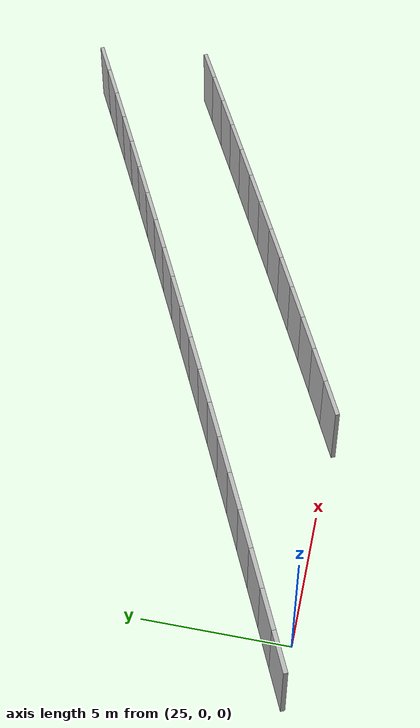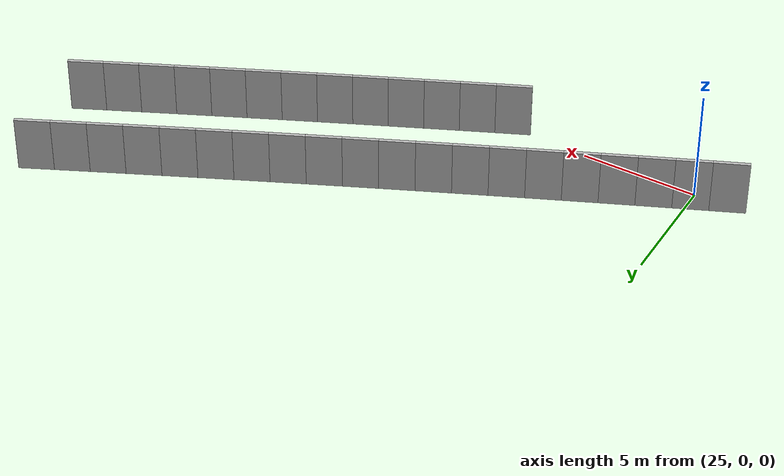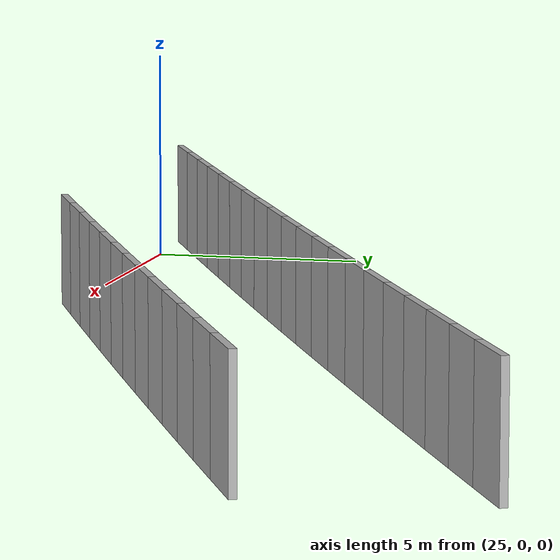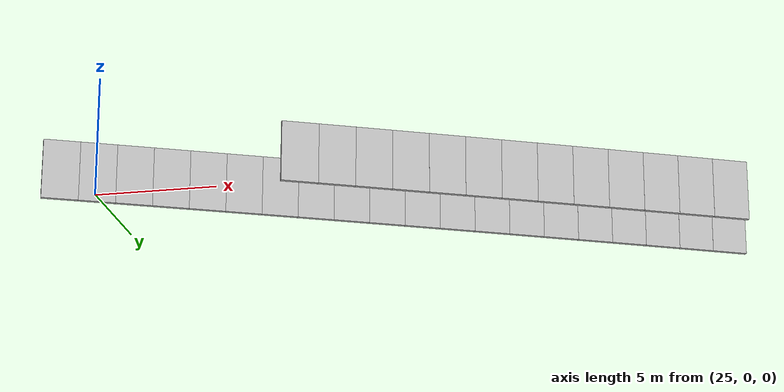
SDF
<?xml version="1.0" ?>
<sdf version="1.6">
  <model name="sps_3305">
    <pose frame="">0 0 0 0 -0 0</pose>
    <static>1</static>
    <self_collide>0</self_collide>
    <allow_auto_disable>0</allow_auto_disable>
    <link name="Wall3928">
      <kinematic>0</kinematic>
      <gravity>1</gravity>
      <self_collide>0</self_collide>
      <collision name="collision">
        <geometry>
          <box>
            <size>1.4966 0.15 2.5</size>
          </box>
        </geometry>
        <pose frame="">0 0 0 0 -0 0</pose>
      </collision>
      <visual name="visual">
        <geometry>
          <box>
            <size>1.4966 0.15 2.5</size>
          </box>
        </geometry>
        <pose frame="">0 0 0 0 -0 0</pose>
        <cast_shadows>1</cast_shadows>
        <transparency>0.0</transparency>
      </visual>
      <pose frame="">23.4305 0.22441 1.25 0 -0 0.417616</pose>
    </link>
    <link name="Wall3929">
      <kinematic>0</kinematic>
      <gravity>1</gravity>
      <self_collide>0</self_collide>
      <collision name="collision">
        <geometry>
          <box>
            <size>1.49643 0.15 2.5</size>
          </box>
        </geometry>
        <pose frame="">0 0 0 0 -0 0</pose>
      </collision>
      <visual name="visual">
        <geometry>
          <box>
            <size>1.49643 0.15 2.5</size>
          </box>
        </geometry>
        <pose frame="">0 0 0 0 -0 0</pose>
        <cast_shadows>1</cast_shadows>
        <transparency>0.0</transparency>
      </visual>
      <pose frame="">24.7979 0.832503 1.25 0 -0 0.419272</pose>
    </link>
    <link name="Wall3930">
      <kinematic>0</kinematic>
      <gravity>1</gravity>
      <self_collide>0</self_collide>
      <collision name="collision">
        <geometry>
          <box>
            <size>1.49664 0.15 2.5</size>
          </box>
        </geometry>
        <pose frame="">0 0 0 0 -0 0</pose>
      </collision>
      <visual name="visual">
        <geometry>
          <box>
            <size>1.49664 0.15 2.5</size>
          </box>
        </geometry>
        <pose frame="">0 0 0 0 -0 0</pose>
        <cast_shadows>1</cast_shadows>
        <transparency>0.0</transparency>
      </visual>
      <pose frame="">26.1644 1.4427 1.25 0 -0 0.420684</pose>
    </link>
    <link name="Wall3931">
      <kinematic>0</kinematic>
      <gravity>1</gravity>
      <self_collide>0</self_collide>
      <collision name="collision">
        <geometry>
          <box>
            <size>1.49654 0.15 2.5</size>
          </box>
        </geometry>
        <pose frame="">0 0 0 0 -0 0</pose>
      </collision>
      <visual name="visual">
        <geometry>
          <box>
            <size>1.49654 0.15 2.5</size>
          </box>
        </geometry>
        <pose frame="">0 0 0 0 -0 0</pose>
        <cast_shadows>1</cast_shadows>
        <transparency>0.0</transparency>
      </visual>
      <pose frame="">27.53 2.05501 1.25 0 -0 0.422324</pose>
    </link>
    <link name="Wall3932">
      <kinematic>0</kinematic>
      <gravity>1</gravity>
      <self_collide>0</self_collide>
      <collision name="collision">
        <geometry>
          <box>
            <size>1.49651 0.15 2.5</size>
          </box>
        </geometry>
        <pose frame="">0 0 0 0 -0 0</pose>
      </collision>
      <visual name="visual">
        <geometry>
          <box>
            <size>1.49651 0.15 2.5</size>
          </box>
        </geometry>
        <pose frame="">0 0 0 0 -0 0</pose>
        <cast_shadows>1</cast_shadows>
        <transparency>0.0</transparency>
      </visual>
      <pose frame="">28.8945 2.6696 1.25 0 -0 0.424076</pose>
    </link>
    <link name="Wall3933">
      <kinematic>0</kinematic>
      <gravity>1</gravity>
      <self_collide>0</self_collide>
      <collision name="collision">
        <geometry>
          <box>
            <size>1.49651 0.15 2.5</size>
          </box>
        </geometry>
        <pose frame="">0 0 0 0 -0 0</pose>
      </collision>
      <visual name="visual">
        <geometry>
          <box>
            <size>1.49651 0.15 2.5</size>
          </box>
        </geometry>
        <pose frame="">0 0 0 0 -0 0</pose>
        <cast_shadows>1</cast_shadows>
        <transparency>0.0</transparency>
      </visual>
      <pose frame="">30.258 3.28639 1.25 0 -0 0.425554</pose>
    </link>
    <link name="Wall3934">
      <kinematic>0</kinematic>
      <gravity>1</gravity>
      <self_collide>0</self_collide>
      <collision name="collision">
        <geometry>
          <box>
            <size>1.49664 0.15 2.5</size>
          </box>
        </geometry>
        <pose frame="">0 0 0 0 -0 0</pose>
      </collision>
      <visual name="visual">
        <geometry>
          <box>
            <size>1.49664 0.15 2.5</size>
          </box>
        </geometry>
        <pose frame="">0 0 0 0 -0 0</pose>
        <cast_shadows>1</cast_shadows>
        <transparency>0.0</transparency>
      </visual>
      <pose frame="">31.6206 3.90529 1.25 0 -0 0.427127</pose>
    </link>
    <link name="Wall3935">
      <kinematic>0</kinematic>
      <gravity>1</gravity>
      <self_collide>0</self_collide>
      <collision name="collision">
        <geometry>
          <box>
            <size>1.49642 0.15 2.5</size>
          </box>
        </geometry>
        <pose frame="">0 0 0 0 -0 0</pose>
      </collision>
      <visual name="visual">
        <geometry>
          <box>
            <size>1.49642 0.15 2.5</size>
          </box>
        </geometry>
        <pose frame="">0 0 0 0 -0 0</pose>
        <cast_shadows>1</cast_shadows>
        <transparency>0.0</transparency>
      </visual>
      <pose frame="">32.9822 4.52629 1.25 0 -0 0.428673</pose>
    </link>
    <link name="Wall3936">
      <kinematic>0</kinematic>
      <gravity>1</gravity>
      <self_collide>0</self_collide>
      <collision name="collision">
        <geometry>
          <box>
            <size>1.49664 0.15 2.5</size>
          </box>
        </geometry>
        <pose frame="">0 0 0 0 -0 0</pose>
      </collision>
      <visual name="visual">
        <geometry>
          <box>
            <size>1.49664 0.15 2.5</size>
          </box>
        </geometry>
        <pose frame="">0 0 0 0 -0 0</pose>
        <cast_shadows>1</cast_shadows>
        <transparency>0.0</transparency>
      </visual>
      <pose frame="">34.3428 5.14949 1.25 0 -0 0.430357</pose>
    </link>
    <link name="Wall3937">
      <kinematic>0</kinematic>
      <gravity>1</gravity>
      <self_collide>0</self_collide>
      <collision name="collision">
        <geometry>
          <box>
            <size>1.49642 0.15 2.5</size>
          </box>
        </geometry>
        <pose frame="">0 0 0 0 -0 0</pose>
      </collision>
      <visual name="visual">
        <geometry>
          <box>
            <size>1.49642 0.15 2.5</size>
          </box>
        </geometry>
        <pose frame="">0 0 0 0 -0 0</pose>
        <cast_shadows>1</cast_shadows>
        <transparency>0.0</transparency>
      </visual>
      <pose frame="">35.7024 5.77489 1.25 0 -0 0.431904</pose>
    </link>
    <link name="Wall3938">
      <kinematic>0</kinematic>
      <gravity>1</gravity>
      <self_collide>0</self_collide>
      <collision name="collision">
        <geometry>
          <box>
            <size>1.4964 0.15 2.5</size>
          </box>
        </geometry>
        <pose frame="">0 0 0 0 -0 0</pose>
      </collision>
      <visual name="visual">
        <geometry>
          <box>
            <size>1.4964 0.15 2.5</size>
          </box>
        </geometry>
        <pose frame="">0 0 0 0 -0 0</pose>
        <cast_shadows>1</cast_shadows>
        <transparency>0.0</transparency>
      </visual>
      <pose frame="">37.0608 6.40239 1.25 0 -0 0.433527</pose>
    </link>
    <link name="Wall3939">
      <kinematic>0</kinematic>
      <gravity>1</gravity>
      <self_collide>0</self_collide>
      <collision name="collision">
        <geometry>
          <box>
            <size>1.49659 0.15 2.5</size>
          </box>
        </geometry>
        <pose frame="">0 0 0 0 -0 0</pose>
      </collision>
      <visual name="visual">
        <geometry>
          <box>
            <size>1.49659 0.15 2.5</size>
          </box>
        </geometry>
        <pose frame="">0 0 0 0 -0 0</pose>
        <cast_shadows>1</cast_shadows>
        <transparency>0.0</transparency>
      </visual>
      <pose frame="">38.4184 7.032 1.25 0 -0 0.434954</pose>
    </link>
    <link name="Wall3940">
      <kinematic>0</kinematic>
      <gravity>1</gravity>
      <self_collide>0</self_collide>
      <collision name="collision">
        <geometry>
          <box>
            <size>1.49657 0.15 2.5</size>
          </box>
        </geometry>
        <pose frame="">0 0 0 0 -0 0</pose>
      </collision>
      <visual name="visual">
        <geometry>
          <box>
            <size>1.49657 0.15 2.5</size>
          </box>
        </geometry>
        <pose frame="">0 0 0 0 -0 0</pose>
        <cast_shadows>1</cast_shadows>
        <transparency>0.0</transparency>
      </visual>
      <pose frame="">39.7752 7.66371 1.25 0 -0 0.436578</pose>
    </link>
    <link name="Wall3941">
      <kinematic>0</kinematic>
      <gravity>1</gravity>
      <self_collide>0</self_collide>
      <collision name="collision">
        <geometry>
          <box>
            <size>1.49654 0.15 2.5</size>
          </box>
        </geometry>
        <pose frame="">0 0 0 0 -0 0</pose>
      </collision>
      <visual name="visual">
        <geometry>
          <box>
            <size>1.49654 0.15 2.5</size>
          </box>
        </geometry>
        <pose frame="">0 0 0 0 -0 0</pose>
        <cast_shadows>1</cast_shadows>
        <transparency>0.0</transparency>
      </visual>
      <pose frame="">41.1309 8.29759 1.25 0 -0 0.438165</pose>
    </link>
    <link name="Wall3942">
      <kinematic>0</kinematic>
      <gravity>1</gravity>
      <self_collide>0</self_collide>
      <collision name="collision">
        <geometry>
          <box>
            <size>1.49645 0.15 2.5</size>
          </box>
        </geometry>
        <pose frame="">0 0 0 0 -0 0</pose>
      </collision>
      <visual name="visual">
        <geometry>
          <box>
            <size>1.49645 0.15 2.5</size>
          </box>
        </geometry>
        <pose frame="">0 0 0 0 -0 0</pose>
        <cast_shadows>1</cast_shadows>
        <transparency>0.0</transparency>
      </visual>
      <pose frame="">42.4854 8.93367 1.25 0 -0 0.43986</pose>
    </link>
    <link name="Wall3943">
      <kinematic>0</kinematic>
      <gravity>1</gravity>
      <self_collide>0</self_collide>
      <collision name="collision">
        <geometry>
          <box>
            <size>1.49659 0.15 2.5</size>
          </box>
        </geometry>
        <pose frame="">0 0 0 0 -0 0</pose>
      </collision>
      <visual name="visual">
        <geometry>
          <box>
            <size>1.49659 0.15 2.5</size>
          </box>
        </geometry>
        <pose frame="">0 0 0 0 -0 0</pose>
        <cast_shadows>1</cast_shadows>
        <transparency>0.0</transparency>
      </visual>
      <pose frame="">43.839 9.57188 1.25 0 -0 0.441303</pose>
    </link>
    <link name="Wall3944">
      <kinematic>0</kinematic>
      <gravity>1</gravity>
      <self_collide>0</self_collide>
      <collision name="collision">
        <geometry>
          <box>
            <size>1.49643 0.15 2.5</size>
          </box>
        </geometry>
        <pose frame="">0 0 0 0 -0 0</pose>
      </collision>
      <visual name="visual">
        <geometry>
          <box>
            <size>1.49643 0.15 2.5</size>
          </box>
        </geometry>
        <pose frame="">0 0 0 0 -0 0</pose>
        <cast_shadows>1</cast_shadows>
        <transparency>0.0</transparency>
      </visual>
      <pose frame="">45.1916 10.2122 1.25 0 -0 0.44298</pose>
    </link>
    <link name="Wall3945">
      <kinematic>0</kinematic>
      <gravity>1</gravity>
      <self_collide>0</self_collide>
      <collision name="collision">
        <geometry>
          <box>
            <size>1.49663 0.15 2.5</size>
          </box>
        </geometry>
        <pose frame="">0 0 0 0 -0 0</pose>
      </collision>
      <visual name="visual">
        <geometry>
          <box>
            <size>1.49663 0.15 2.5</size>
          </box>
        </geometry>
        <pose frame="">0 0 0 0 -0 0</pose>
        <cast_shadows>1</cast_shadows>
        <transparency>0.0</transparency>
      </visual>
      <pose frame="">46.5432 10.8547 1.25 0 -0 0.444496</pose>
    </link>
    <link name="Wall3946">
      <kinematic>0</kinematic>
      <gravity>1</gravity>
      <self_collide>0</self_collide>
      <collision name="collision">
        <geometry>
          <box>
            <size>1.49655 0.15 2.5</size>
          </box>
        </geometry>
        <pose frame="">0 0 0 0 -0 0</pose>
      </collision>
      <visual name="visual">
        <geometry>
          <box>
            <size>1.49655 0.15 2.5</size>
          </box>
        </geometry>
        <pose frame="">0 0 0 0 -0 0</pose>
        <cast_shadows>1</cast_shadows>
        <transparency>0.0</transparency>
      </visual>
      <pose frame="">47.8939 11.4994 1.25 0 -0 0.446192</pose>
    </link>
    <link name="Wall3947">
      <kinematic>0</kinematic>
      <gravity>1</gravity>
      <self_collide>0</self_collide>
      <collision name="collision">
        <geometry>
          <box>
            <size>1.49657 0.15 2.5</size>
          </box>
        </geometry>
        <pose frame="">0 0 0 0 -0 0</pose>
      </collision>
      <visual name="visual">
        <geometry>
          <box>
            <size>1.49657 0.15 2.5</size>
          </box>
        </geometry>
        <pose frame="">0 0 0 0 -0 0</pose>
        <cast_shadows>1</cast_shadows>
        <transparency>0.0</transparency>
      </visual>
      <pose frame="">49.2434 12.1463 1.25 0 -0 0.447816</pose>
    </link>
    <link name="Wall7709">
      <kinematic>0</kinematic>
      <gravity>1</gravity>
      <self_collide>0</self_collide>
      <collision name="collision">
        <geometry>
          <box>
            <size>1.50298 0.15 2.5</size>
          </box>
        </geometry>
        <pose frame="">0 0 0 0 -0 0</pose>
      </collision>
      <visual name="visual">
        <geometry>
          <box>
            <size>1.50298 0.15 2.5</size>
          </box>
        </geometry>
        <pose frame="">0 0 0 0 -0 0</pose>
        <cast_shadows>1</cast_shadows>
        <transparency>0.0</transparency>
      </visual>
      <pose frame="">33.3376 0.137587 1.25 0 -0 0.427081</pose>
    </link>
    <link name="Wall7710">
      <kinematic>0</kinematic>
      <gravity>1</gravity>
      <self_collide>0</self_collide>
      <collision name="collision">
        <geometry>
          <box>
            <size>1.50311 0.15 2.5</size>
          </box>
        </geometry>
        <pose frame="">0 0 0 0 -0 0</pose>
      </collision>
      <visual name="visual">
        <geometry>
          <box>
            <size>1.50311 0.15 2.5</size>
          </box>
        </geometry>
        <pose frame="">0 0 0 0 -0 0</pose>
        <cast_shadows>1</cast_shadows>
        <transparency>0.0</transparency>
      </visual>
      <pose frame="">34.7051 0.761367 1.25 0 -0 0.428829</pose>
    </link>
    <link name="Wall7711">
      <kinematic>0</kinematic>
      <gravity>1</gravity>
      <self_collide>0</self_collide>
      <collision name="collision">
        <geometry>
          <box>
            <size>1.50298 0.15 2.5</size>
          </box>
        </geometry>
        <pose frame="">0 0 0 0 -0 0</pose>
      </collision>
      <visual name="visual">
        <geometry>
          <box>
            <size>1.50298 0.15 2.5</size>
          </box>
        </geometry>
        <pose frame="">0 0 0 0 -0 0</pose>
        <cast_shadows>1</cast_shadows>
        <transparency>0.0</transparency>
      </visual>
      <pose frame="">36.0716 1.38728 1.25 0 -0 0.430207</pose>
    </link>
    <link name="Wall7712">
      <kinematic>0</kinematic>
      <gravity>1</gravity>
      <self_collide>0</self_collide>
      <collision name="collision">
        <geometry>
          <box>
            <size>1.5032 0.15 2.5</size>
          </box>
        </geometry>
        <pose frame="">0 0 0 0 -0 0</pose>
      </collision>
      <visual name="visual">
        <geometry>
          <box>
            <size>1.5032 0.15 2.5</size>
          </box>
        </geometry>
        <pose frame="">0 0 0 0 -0 0</pose>
        <cast_shadows>1</cast_shadows>
        <transparency>0.0</transparency>
      </visual>
      <pose frame="">37.4372 2.0153 1.25 0 -0 0.431883</pose>
    </link>
    <link name="Wall7713">
      <kinematic>0</kinematic>
      <gravity>1</gravity>
      <self_collide>0</self_collide>
      <collision name="collision">
        <geometry>
          <box>
            <size>1.50313 0.15 2.5</size>
          </box>
        </geometry>
        <pose frame="">0 0 0 0 -0 0</pose>
      </collision>
      <visual name="visual">
        <geometry>
          <box>
            <size>1.50313 0.15 2.5</size>
          </box>
        </geometry>
        <pose frame="">0 0 0 0 -0 0</pose>
        <cast_shadows>1</cast_shadows>
        <transparency>0.0</transparency>
      </visual>
      <pose frame="">38.8019 2.64549 1.25 0 -0 0.433335</pose>
    </link>
    <link name="Wall7714">
      <kinematic>0</kinematic>
      <gravity>1</gravity>
      <self_collide>0</self_collide>
      <collision name="collision">
        <geometry>
          <box>
            <size>1.50311 0.15 2.5</size>
          </box>
        </geometry>
        <pose frame="">0 0 0 0 -0 0</pose>
      </collision>
      <visual name="visual">
        <geometry>
          <box>
            <size>1.50311 0.15 2.5</size>
          </box>
        </geometry>
        <pose frame="">0 0 0 0 -0 0</pose>
        <cast_shadows>1</cast_shadows>
        <transparency>0.0</transparency>
      </visual>
      <pose frame="">40.1655 3.27788 1.25 0 -0 0.435133</pose>
    </link>
    <link name="Wall7715">
      <kinematic>0</kinematic>
      <gravity>1</gravity>
      <self_collide>0</self_collide>
      <collision name="collision">
        <geometry>
          <box>
            <size>1.50309 0.15 2.5</size>
          </box>
        </geometry>
        <pose frame="">0 0 0 0 -0 0</pose>
      </collision>
      <visual name="visual">
        <geometry>
          <box>
            <size>1.50309 0.15 2.5</size>
          </box>
        </geometry>
        <pose frame="">0 0 0 0 -0 0</pose>
        <cast_shadows>1</cast_shadows>
        <transparency>0.0</transparency>
      </visual>
      <pose frame="">41.5281 3.91258 1.25 0 -0 0.43675</pose>
    </link>
    <link name="Wall7716">
      <kinematic>0</kinematic>
      <gravity>1</gravity>
      <self_collide>0</self_collide>
      <collision name="collision">
        <geometry>
          <box>
            <size>1.50323 0.15 2.5</size>
          </box>
        </geometry>
        <pose frame="">0 0 0 0 -0 0</pose>
      </collision>
      <visual name="visual">
        <geometry>
          <box>
            <size>1.50323 0.15 2.5</size>
          </box>
        </geometry>
        <pose frame="">0 0 0 0 -0 0</pose>
        <cast_shadows>1</cast_shadows>
        <transparency>0.0</transparency>
      </visual>
      <pose frame="">42.8897 4.54939 1.25 0 -0 0.438187</pose>
    </link>
    <link name="Wall7717">
      <kinematic>0</kinematic>
      <gravity>1</gravity>
      <self_collide>0</self_collide>
      <collision name="collision">
        <geometry>
          <box>
            <size>1.50295 0.15 2.5</size>
          </box>
        </geometry>
        <pose frame="">0 0 0 0 -0 0</pose>
      </collision>
      <visual name="visual">
        <geometry>
          <box>
            <size>1.50295 0.15 2.5</size>
          </box>
        </geometry>
        <pose frame="">0 0 0 0 -0 0</pose>
        <cast_shadows>1</cast_shadows>
        <transparency>0.0</transparency>
      </visual>
      <pose frame="">44.2503 5.18819 1.25 0 -0 0.439709</pose>
    </link>
    <link name="Wall7718">
      <kinematic>0</kinematic>
      <gravity>1</gravity>
      <self_collide>0</self_collide>
      <collision name="collision">
        <geometry>
          <box>
            <size>1.50311 0.15 2.5</size>
          </box>
        </geometry>
        <pose frame="">0 0 0 0 -0 0</pose>
      </collision>
      <visual name="visual">
        <geometry>
          <box>
            <size>1.50311 0.15 2.5</size>
          </box>
        </geometry>
        <pose frame="">0 0 0 0 -0 0</pose>
        <cast_shadows>1</cast_shadows>
        <transparency>0.0</transparency>
      </visual>
      <pose frame="">45.6098 5.82918 1.25 0 -0 0.441455</pose>
    </link>
    <link name="Wall7719">
      <kinematic>0</kinematic>
      <gravity>1</gravity>
      <self_collide>0</self_collide>
      <collision name="collision">
        <geometry>
          <box>
            <size>1.50303 0.15 2.5</size>
          </box>
        </geometry>
        <pose frame="">0 0 0 0 -0 0</pose>
      </collision>
      <visual name="visual">
        <geometry>
          <box>
            <size>1.50303 0.15 2.5</size>
          </box>
        </geometry>
        <pose frame="">0 0 0 0 -0 0</pose>
        <cast_shadows>1</cast_shadows>
        <transparency>0.0</transparency>
      </visual>
      <pose frame="">46.9683 6.4724 1.25 0 -0 0.442961</pose>
    </link>
    <link name="Wall7720">
      <kinematic>0</kinematic>
      <gravity>1</gravity>
      <self_collide>0</self_collide>
      <collision name="collision">
        <geometry>
          <box>
            <size>1.50307 0.15 2.5</size>
          </box>
        </geometry>
        <pose frame="">0 0 0 0 -0 0</pose>
      </collision>
      <visual name="visual">
        <geometry>
          <box>
            <size>1.50307 0.15 2.5</size>
          </box>
        </geometry>
        <pose frame="">0 0 0 0 -0 0</pose>
        <cast_shadows>1</cast_shadows>
        <transparency>0.0</transparency>
      </visual>
      <pose frame="">48.3257 7.11769 1.25 0 -0 0.444524</pose>
    </link>
    <link name="Wall7721">
      <kinematic>0</kinematic>
      <gravity>1</gravity>
      <self_collide>0</self_collide>
      <collision name="collision">
        <geometry>
          <box>
            <size>1.50316 0.15 2.5</size>
          </box>
        </geometry>
        <pose frame="">0 0 0 0 -0 0</pose>
      </collision>
      <visual name="visual">
        <geometry>
          <box>
            <size>1.50316 0.15 2.5</size>
          </box>
        </geometry>
        <pose frame="">0 0 0 0 -0 0</pose>
        <cast_shadows>1</cast_shadows>
        <transparency>0.0</transparency>
      </visual>
      <pose frame="">49.6822 7.76518 1.25 0 -0 0.44616</pose>
    </link>
  </model>
</sdf>
